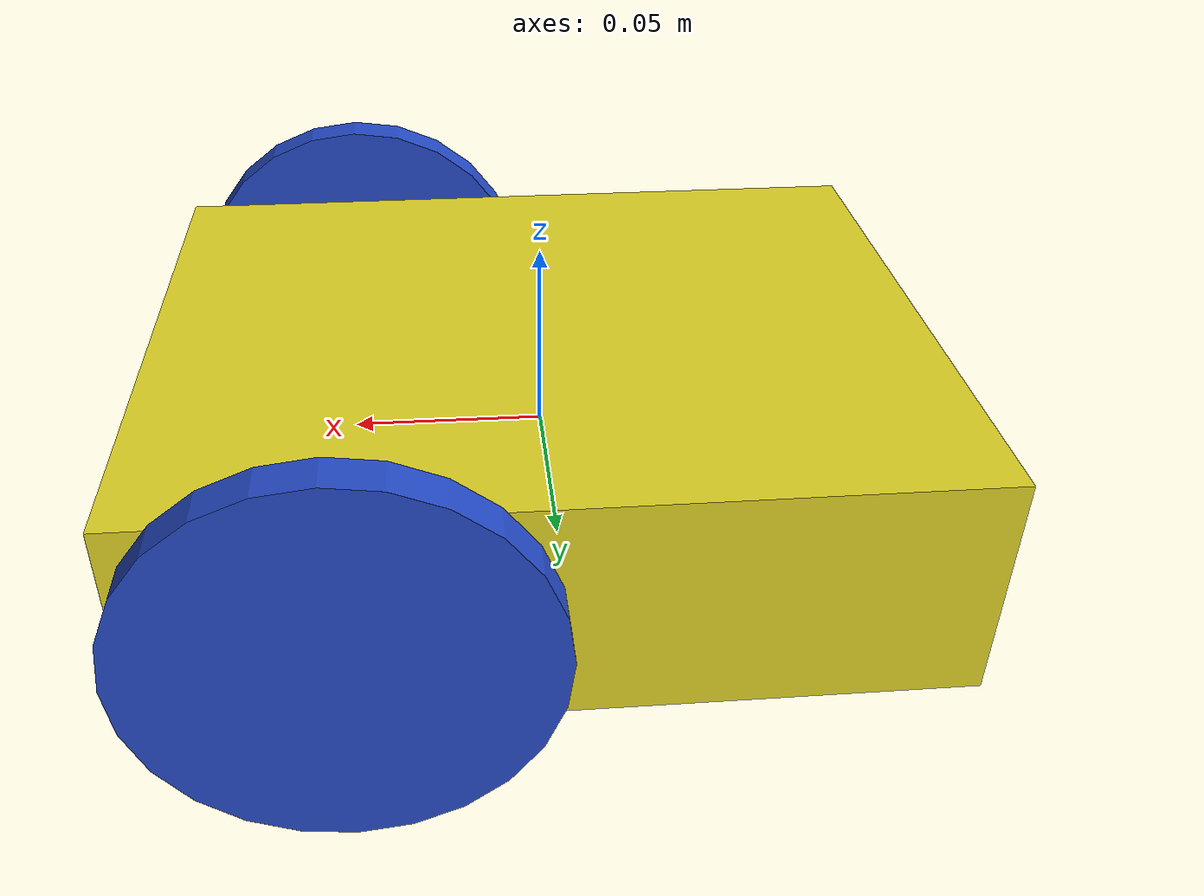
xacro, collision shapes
<?xml version="1.0" ?>
<!-- PuzzleBot differential drive -->
<robot name="puzzlebot" xmlns:xacro="http://www.ros.org/wiki/xacro">

<!-- files for gazebo costumization -->
<xacro:include filename="$(find puzzlebot_gazebo)/urdf/materials.xacro" />
<xacro:include filename="$(find puzzlebot_gazebo)/urdf/parameters.xacro" />
<xacro:include filename="$(find puzzlebot_gazebo)/urdf/puzzlebot.gazebo" />
<xacro:property name="PI" value="3.1415926535897931"/>
<xacro:property name="chassisX" value="0.2"/>
<xacro:property name="chassisY" value="0.16"/>
<xacro:property name="chassisZ" value="0.06"/>
<xacro:property name="chassisMass" value="0.710"/>

<xacro:property name="casterRadius" value="0.0065"/>
<xacro:property name="casterMass" value="0.012"/>

<xacro:property name="wheelHeight" value="0.01"/>
<xacro:property name="wheelRadius" value="0.05"/>
<xacro:property name="wheelPos" value="0.05"/>
<xacro:property name="wheelDistance" value="0.08"/>
<xacro:property name="wheelMass" value="0.03"/>

<xacro:property name="cameraSize" value="0.07"/>
<xacro:property name="cameraMass" value="0.018"/>
<xacro:property name="cameraX" value="0.02"/>
<xacro:property name="cameraY" value="0.04"/>
<xacro:property name="cameraZ" value="0.06"/>
<!-- Dummy link to fiz robot chassis -->
  <link name="base_link">
    <pose>0 0 0 0 0 0</pose>
  </link>

  <joint name="base_link_to_chassis" type="fixed">
	   <parent link="base_link"/>
	   <child link="chassis"/>
  </joint>

  <link name="chassis">
    <pose>0 0 0 0 0 0</pose>
    <visual>
      <origin xyz="0 0 0" rpy="${PI/2} 0 ${PI/2}"/>
          <geometry>
          	 <mesh filename="file://${mesh_chassis}"/>
          </geometry>
    </visual>

    <collision name="collision_chassis">
    	<origin rpy="0 0 0" xyz="0 0 0"/>
          <geometry>
            	 <box size="${chassisX} ${chassisY} ${chassisZ}"/>
          </geometry>
    </collision>

   <!-- agregar caster wheel en frame -->
    <collision>
	    <origin xyz="-0.095 0 -0.0425" rpy="0 0 0"/>
		  <geometry>
		     <sphere radius="${casterRadius}"/>
		  </geometry>
		        <surface>
	      <friction>
	         <ode>
	          <slip1>0.0</slip1>
	          <slip2>0.0</slip2>
	         </ode>
	      </friction>
      </surface>
	  </collision>

	  <visual>
      <origin xyz="-0.095 0 -0.0425" rpy="0 0 0"/>
          <geometry>
          	   <sphere radius="${casterRadius}"/>
          </geometry>
    </visual>

  </link>

 <!--RIGHT WHEEL -->
	<link name="right_wheel">
	  <visual>
	  	<origin xyz="0 0 0" rpy="-${PI/2} 0 0" />
	    <geometry>
	      <!-- with mesh-->
	      	<mesh filename="file://${mesh_wheel}"/>
	    </geometry>
	  </visual>

	  <collision>
		  <origin xyz="0 0 0 " rpy="-${PI/2} 0 0"/>
			  <geometry>
			     <cylinder length="${wheelHeight}" radius="${wheelRadius}" />
			  </geometry>
	  </collision>
	</link>

<!-- LEFT WHEEL -->
	<link name="left_wheel">
	  <visual>
	    <geometry>
        <!-- with mesh-->
	      	<mesh filename="file://${mesh_wheel}"/>
	    </geometry>
	    <origin xyz="0 0 0" rpy="${PI/2} 0 0" />
	  </visual>

	  <collision>
		  <origin xyz="0 0 0" rpy="${PI/2} 0 0" />
		  <geometry>
		     <cylinder length="${wheelHeight}" radius="${wheelRadius}"/>
		  </geometry>
	  </collision>
	</link>

<!-- JOINTS  -->

  <joint name="base_to_right_w" type="continuous">
	  <parent link="chassis" />
	  <child link="right_wheel" />
	  <origin xyz="0.05 -0.09 0.0" />
		<axis xyz="0 1 0" rpy="0 0 0" />
	</joint>

	<joint name="base_to_left_w" type="continuous">
	  <parent link="chassis" />
	  <child link="left_wheel" />
	  <origin xyz="0.05 0.09 0" />
	  <axis xyz="0 1 0" rpy="0 0 0" />
	</joint>
</robot>

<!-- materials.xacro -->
<robot xmlns:xacro="http://www.ros.org/wiki/xacro">
  <material name="black">
    <color rgba="0.0 0.0 0.0 1.0"/>
  </material>
  <material name="blue">
    <color rgba="0.203125 0.23828125 0.28515625 1.0"/>
  </material>
  <material name="green">
    <color rgba="0.0 0.8 0.0 1.0"/>
  </material>
  <material name="grey">
    <color rgba="0.2 0.2 0.2 1.0"/>
  </material>
  <material name="orange">
    <color rgba="1.0 0.423529411765 0.0392156862745 1.0"/>
  </material>
  <material name="brown">
    <color rgba="0.870588235294 0.811764705882 0.764705882353 1.0"/>
  </material>
  <material name="red">
    <color rgba="0.80078125 0.12890625 0.1328125 1.0"/>
  </material>
  <material name="white">
    <color rgba="1.0 1.0 1.0 1.0"/>
  </material>
</robot>

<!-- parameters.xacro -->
<robot xmlns:xacro="http://www.ros.org/wiki/xacro">

<!--parameters for gazebo properties-->
<xacro:property name="PI" value="3.1415926535897931"/>

<xacro:property name="chassisX" value="0.2"/>
<xacro:property name="chassisY" value="0.16"/>
<xacro:property name="chassisZ" value="0.06"/>
<xacro:property name="chassisMass" value="0.710"/>

<xacro:property name="casterRadius" value="0.0065"/>
<xacro:property name="casterMass" value="0.012"/>

<xacro:property name="wheelHeight" value="0.01"/>
<xacro:property name="wheelRadius" value="0.2"/>
<xacro:property name="wheelPos" value="0.05"/>
<xacro:property name="wheelDistance" value="0.08"/>
<xacro:property name="wheelMass" value="0.03"/>

<xacro:property name="cameraSize" value="0.07"/>
<xacro:property name="cameraMass" value="0.018"/>
<xacro:property name="cameraX" value="0.02"/>
<xacro:property name="cameraY" value="0.04"/>
<xacro:property name="cameraZ" value="0.06"/>

<xacro:property name="mesh_chassis"  value="$(find manchester_week1)/meshes/MCR2_1000_13_Chassis.stl" />
<xacro:property name="mesh_wheel"  value="$(find manchester_week1)/meshes/MCR2_1000_1_1_Wheel_Coupler_2.stl" />
<!--xacro:property name="mesh_camera"  value="$(find puzzlebot_gazebo)/meshes/camera.stl" /-->

</robot>
